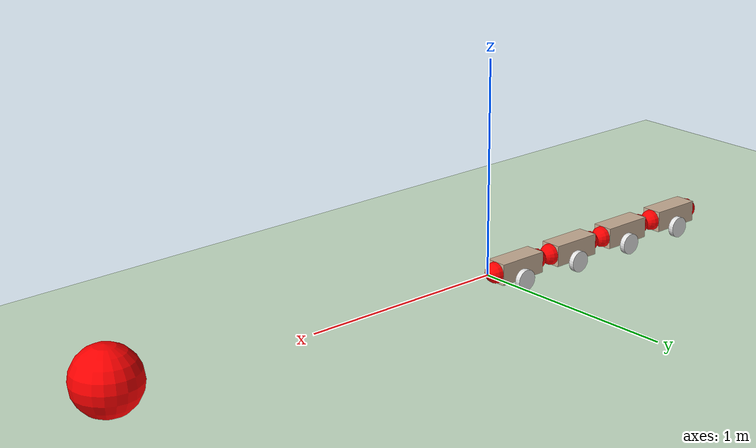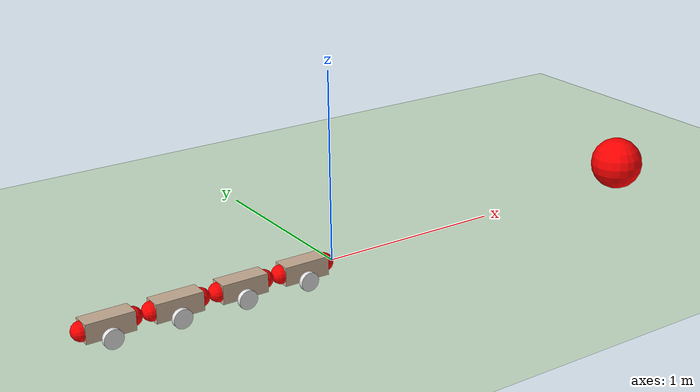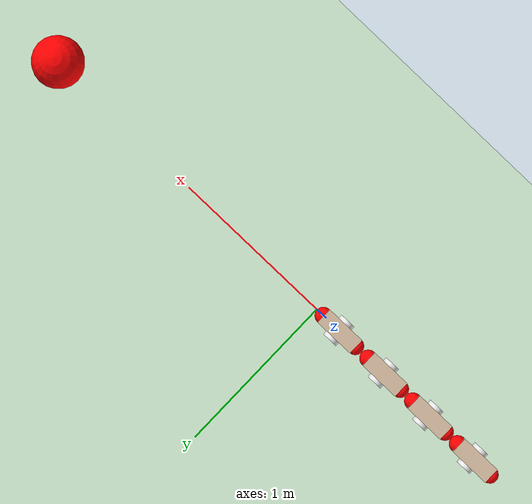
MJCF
<mujoco model="soft_snake_4link">
    <compiler angle="degree" coordinate="local" inertiafromgeom="true"/>

    <option integrator="Euler" timestep="0.002">
        <flag energy="enable" clampctrl="enable"/>
    </option>

    <size nconmax="500"/>

    <default>
        <geom conaffinity="0" condim="3" friction="1 0.05 0.00001" margin="0.01" density="600"/>
        <joint armature="0.001" damping="0" frictionloss="0.001"/>

        <default class="wheel">
            <joint axis="0 1 0" type="hinge" damping="0.2"/>
            <geom type="cylinder" fromto="0 0 0 0 0.025 0" size="0.05"
                  material="geom" rgba=".9 .9 .9 1" friction="1.25 1.0 0.0001"/>
        </default>

        <default class="link">
            <geom material="geom" rgba="0.8 0.7 .6 1"/>
            <joint pos="0 0 0" axis="0 0 1" type="hinge" limited="true" range="-90 90"/>
        </default>

        <position ctrllimited="true" ctrlrange="-1.5 1.5"
                  forcelimited="true" forcerange="-20.0 20.0" kp="20" gear="1"/>
    </default>

    <asset>
        <texture builtin="gradient" height="100" rgb1="1 1 1" rgb2="0 0 0" type="skybox" width="100"/>
        <texture builtin="flat" height="128" mark="cross" markrgb="1 1 1" name="texgeom"
                 random="0.01" rgb1="0.8 0.6 0.4" rgb2="0.8 0.6 0.4" type="cube" width="128"/>
        <texture builtin="checker" height="100" name="texplane" rgb1="0 0 0"
                 rgb2="0.8 0.8 0.8" type="2d" width="100"/>
        <material name="MatPlane" reflectance="0.5" shininess="1" specular="1"
                  texrepeat="80 80" texture="texplane"/>
        <material name="geom" texture="texgeom" texuniform="true"/>
        <material name="MatTarget" rgba="1 0 0 1" reflectance="0.05" shininess="0.1" specular="0.1"/>
    </asset>

    <visual>
        <map znear="0.0625"/>
        <quality shadowsize="4096"/>
    </visual>

    <worldbody>
        <light cutoff="100" diffuse="1 1 1" dir="0 0 -1.3" directional="true"
               exponent="1" pos="0 0 1.3" specular=".1 .1 .1"/>
        <geom name="floor" size="80 80 10" material="MatPlane" conaffinity="1"
              condim="3" pos="0 0 -0.1" rgba="0.8 0.9 0.8 1" type="plane"/>

        <!-- Goal marker -->
        <body name="goal" pos="2 0 0.1">
            <joint axis="1 0 0" name="goal_slider_x" type="slide"/>
            <joint axis="0 1 0" name="goal_slider_y" type="slide"/>
            <geom name="goal_geom" type="sphere" pos="0 0 0" size="0.15" material="MatTarget"/>
        </body>

        <!-- 4-link snake body -->
        <body name="link1" pos="0 0 0.0">
            <!-- Free body DOFs -->
            <joint axis="1 0 0" name="slider_x" type="slide"/>
            <joint axis="0 1 0" name="slider_y" type="slide"/>
            <joint axis="0 0 1" name="slider_z" type="slide"/>
            <joint pos="0 0 0" axis="1 0 0" name="hinge_x" type="hinge"/>
            <joint pos="0 0 0" axis="0 1 0" name="hinge_y" type="hinge"/>
            <joint pos="0 0 0" axis="0 0 1" name="hinge_z" type="hinge"/>

            <!-- Head link body and wheels -->
            <body pos="-0.175 0.05 -0.05" childclass="wheel"><joint name="wheel_l_0"/><geom/></body>
            <geom name="head" pos="-0.175 0 0" size="0.125 0.05 0.05" type="box"
                  material="geom" rgba="0.8 0.7 .6 1"/>
            <geom fromto="-0.30 0 0 -0.05 0 0" size="0.05" type="capsule" rgba="1.0 0.0 0.0 1"/>
            <body pos="-0.175 -0.075 -0.05" childclass="wheel"><joint name="wheel_r_0"/><geom/></body>

            <site name="site_head" pos="-0.175 0 0.0" type="box" size=".01 .01 .01"/>

            <camera name="track_top" mode="trackcom" pos="0 0 5" euler="0 0 0"/>
            <camera name="track_side" mode="trackcom" pos="0 -4 6" euler="30 0 0"/>

            <!-- Link 2 -->
            <body name="link2" pos="-0.35 0 0" childclass="link">
                <joint name="joint01"/>
                <body pos="-0.175 0.05 -0.05" childclass="wheel"><joint name="wheel_l_1"/><geom/></body>
                <geom name="link2_geom" pos="-0.175 0 0" size="0.125 0.05 0.05" type="box"
                      material="geom" rgba="0.8 0.7 .6 1"/>
                <geom fromto="-0.30 0 0 -0.05 0 0" size="0.05" type="capsule" rgba="1.0 0.0 0.0 1"/>
                <body pos="-0.175 -0.075 -0.05" childclass="wheel"><joint name="wheel_r_1"/><geom/></body>

                <!-- Link 3 -->
                <body name="link3" pos="-0.35 0 0" childclass="link">
                    <joint name="joint02"/>
                    <body pos="-0.175 0.05 -0.05" childclass="wheel"><joint name="wheel_l_2"/><geom/></body>
                    <geom name="link3_geom" pos="-0.175 0 0" size="0.125 0.05 0.05" type="box"
                          material="geom" rgba="0.8 0.7 .6 1"/>
                    <geom fromto="-0.30 0 0 -0.05 0 0" size="0.05" type="capsule" rgba="1.0 0.0 0.0 1"/>
                    <body pos="-0.175 -0.075 -0.05" childclass="wheel"><joint name="wheel_r_2"/><geom/></body>

                    <!-- Link 4 (tail) -->
                    <body name="link4" pos="-0.35 0 0" childclass="link">
                        <joint name="joint03"/>
                        <body pos="-0.175 0.05 -0.05" childclass="wheel"><joint name="wheel_l_3"/><geom/></body>
                        <geom name="link4_geom" pos="-0.175 0 0" size="0.125 0.05 0.05" type="box"
                              material="geom" rgba="0.8 0.7 .6 1"/>
                        <geom fromto="-0.30 0 0 -0.05 0 0" size="0.05" type="capsule" rgba="1.0 0.0 0.0 1"/>
                        <body pos="-0.175 -0.075 -0.05" childclass="wheel"><joint name="wheel_r_3"/><geom/></body>
                    </body>
                </body>
            </body>
        </body>
    </worldbody>

    <actuator>
        <position name="actuator_joint01" joint="joint01"/>
        <position name="actuator_joint02" joint="joint02"/>
        <position name="actuator_joint03" joint="joint03"/>
    </actuator>

    <sensor>
        <actuatorfrc name="sensor_frc_joint01" actuator="actuator_joint01"/>
        <actuatorfrc name="sensor_frc_joint02" actuator="actuator_joint02"/>
        <actuatorfrc name="sensor_frc_joint03" actuator="actuator_joint03"/>
        <velocimeter name="sensor_velocimeter" site="site_head"/>
        <gyro name="sensor_gyro" site="site_head"/>
    </sensor>
</mujoco>
